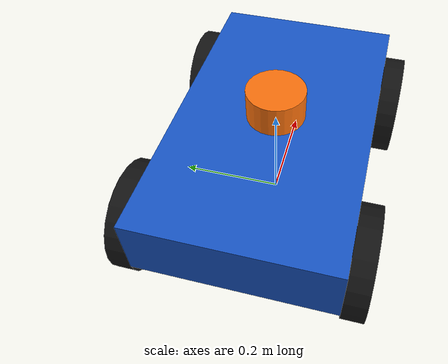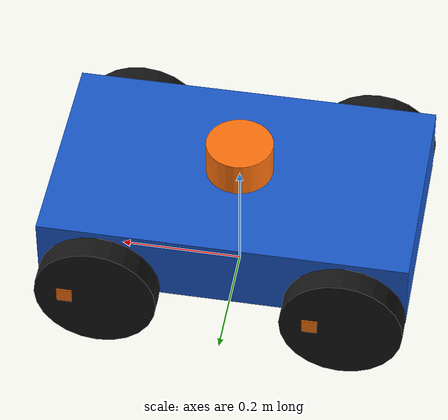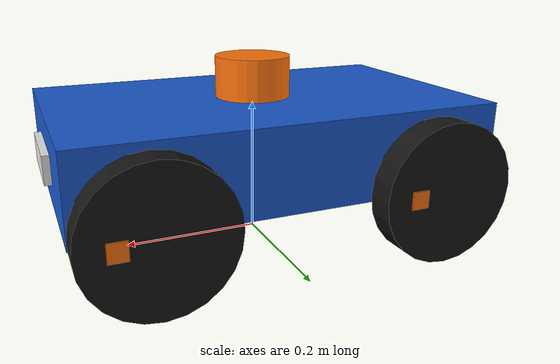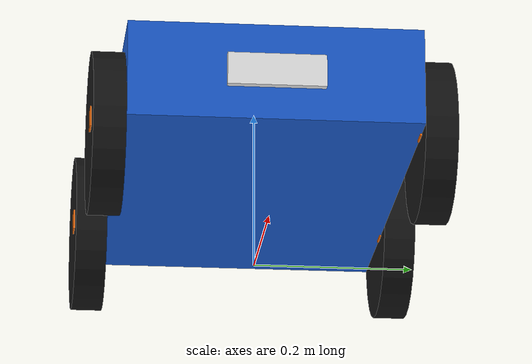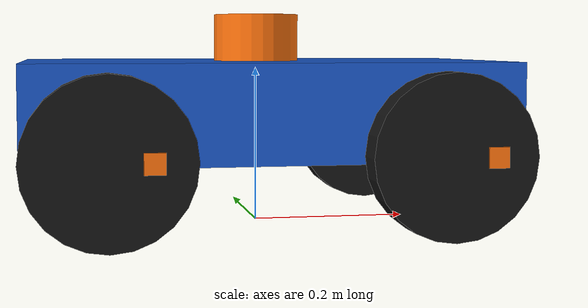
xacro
<?xml version="1.0"?>
<robot name="student_car" xmlns:xacro="http://www.ros.org/wiki/xacro">
  <!-- SI units: meters and radians; x forward, y left, z up. -->
  <xacro:property name="body_length" value="0.60"/>
  <xacro:property name="body_width" value="0.36"/>
  <xacro:property name="body_height" value="0.12"/>
  <xacro:property name="wheel_radius" value="0.10"/>
  <xacro:property name="wheel_width" value="0.04"/>
  <material name="blue"><color rgba="0.1 0.35 0.8 1"/></material>
  <material name="black"><color rgba="0.08 0.08 0.08 1"/></material>
  <material name="orange"><color rgba="1 0.45 0.05 1"/></material>
  <material name="white"><color rgba="0.9 0.9 0.9 1"/></material>
  <link name="base_footprint"/>
  <joint name="footprint_to_base" type="fixed">
    <parent link="base_footprint"/><child link="base_link"/>
    <origin xyz="0 0 0.15"/>
  </joint>
  <link name="base_link">
    <visual><geometry><box size="${body_length} ${body_width} ${body_height}"/></geometry><material name="blue"/></visual>
    <collision><geometry><box size="${body_length} ${body_width} ${body_height}"/></geometry></collision>
    <inertial>
      <mass value="3"/>
      <inertia ixx="${3*(body_width**2+body_height**2)/12}" ixy="0" ixz="0" iyy="${3*(body_length**2+body_height**2)/12}" iyz="0" izz="${3*(body_length**2+body_width**2)/12}"/>
    </inertial>
  </link>
  <xacro:macro name="wheel" params="name x y">
    <link name="${name}_link">
      <visual>
        <origin rpy="${pi/2} 0 0"/>
        <geometry><cylinder radius="${wheel_radius}" length="${wheel_width}"/></geometry>
        <material name="black"/>
      </visual>
      <!-- Offset hub marker makes wheel rotation visible in RViz. -->
      <visual><origin xyz="0.05 0 0"/><geometry><box size="0.025 0.044 0.025"/></geometry><material name="orange"/></visual>
      <collision><origin rpy="${pi/2} 0 0"/><geometry><cylinder radius="${wheel_radius}" length="${wheel_width}"/></geometry></collision>
      <inertial><mass value="0.2"/><inertia ixx="${0.2*(3*wheel_radius**2+wheel_width**2)/12}" ixy="0" ixz="0" iyy="${0.2*wheel_radius**2/2}" iyz="0" izz="${0.2*(3*wheel_radius**2+wheel_width**2)/12}"/></inertial>
    </link>
    <joint name="${name}_joint" type="continuous">
      <parent link="base_link"/><child link="${name}_link"/>
      <origin xyz="${x} ${y} -0.05"/><axis xyz="0 1 0"/>
    </joint>
  </xacro:macro>
  <xacro:wheel name="front_left_wheel" x="0.20" y="${body_width/2+wheel_width/2}"/>
  <xacro:wheel name="rear_left_wheel" x="-0.20" y="${body_width/2+wheel_width/2}"/>
  <xacro:wheel name="front_right_wheel" x="0.20" y="${-body_width/2-wheel_width/2}"/>
  <xacro:wheel name="rear_right_wheel" x="-0.20" y="${-body_width/2-wheel_width/2}"/>
  <link name="lidar_link">
    <inertial><mass value="0.1"/><inertia ixx="0.000106" ixy="0" ixz="0" iyy="0.000106" iyz="0" izz="0.000151"/></inertial>
    <visual><geometry><cylinder radius="0.055" length="0.06"/></geometry><material name="orange"/></visual>
  </link>
  <joint name="lidar_joint" type="fixed"><parent link="base_link"/><child link="lidar_link"/><origin xyz="0 0 0.09"/></joint>
  <link name="front_marker_link">
    <inertial><mass value="0.01"/><inertia ixx="0.0000133" ixy="0" ixz="0" iyy="0.00000142" iyz="0" izz="0.0000121"/></inertial><visual><geometry><box size="0.01 0.12 0.04"/></geometry><material name="white"/></visual></link>
  <joint name="front_marker_joint" type="fixed"><parent link="base_link"/><child link="front_marker_link"/><origin xyz="0.305 0 0"/></joint>

  <!-- Four wheel skid-steer: Gazebo physics publishes odom->base_footprint. -->
  <gazebo reference="base_link"><material>Gazebo/Blue</material></gazebo>
  <xacro:macro name="wheel_surface" params="name">
    <gazebo reference="${name}_link">
      <material>Gazebo/Black</material><mu1>0.8</mu1><mu2>0.4</mu2>
      <kp>1000000</kp><kd>100</kd>
    </gazebo>
  </xacro:macro>
  <xacro:wheel_surface name="front_left_wheel"/>
  <xacro:wheel_surface name="rear_left_wheel"/>
  <xacro:wheel_surface name="front_right_wheel"/>
  <xacro:wheel_surface name="rear_right_wheel"/>
  <gazebo>
    <plugin name="drive" filename="libgazebo_ros_skid_steer_drive.so">
      <robotNamespace>/</robotNamespace><updateRate>50</updateRate>
      <leftFrontJoint>front_left_wheel_joint</leftFrontJoint>
      <rightFrontJoint>front_right_wheel_joint</rightFrontJoint>
      <leftRearJoint>rear_left_wheel_joint</leftRearJoint>
      <rightRearJoint>rear_right_wheel_joint</rightRearJoint>
      <wheelSeparation>0.40</wheelSeparation><wheelDiameter>0.20</wheelDiameter>
      <torque>5</torque><commandTopic>cmd_vel</commandTopic>
      <odometryTopic>odom</odometryTopic><odometryFrame>odom</odometryFrame>
      <robotBaseFrame>base_footprint</robotBaseFrame><broadcastTF>true</broadcastTF>
    </plugin>
    <plugin name="wheel_states" filename="libgazebo_ros_joint_state_publisher.so">
      <robotNamespace>/</robotNamespace><updateRate>30</updateRate>
      <jointName>front_left_wheel_joint,rear_left_wheel_joint,front_right_wheel_joint,rear_right_wheel_joint</jointName>
    </plugin>
  </gazebo>
  <gazebo reference="lidar_link">
    <material>Gazebo/Orange</material>
    <sensor name="laser" type="ray">
      <pose>0 0 0 0 0 0</pose><always_on>true</always_on><update_rate>10</update_rate>
      <visualize>false</visualize>
      <ray>
        <scan><horizontal><samples>360</samples><resolution>1</resolution><min_angle>-${pi}</min_angle><max_angle>${pi}</max_angle></horizontal></scan>
        <range><min>0.12</min><max>8.0</max><resolution>0.01</resolution></range>
        <noise><type>gaussian</type><mean>0</mean><stddev>0.005</stddev></noise>
      </ray>
      <plugin name="laser_ros" filename="libgazebo_ros_laser.so">
        <robotNamespace>/</robotNamespace><topicName>scan</topicName><frameName>lidar_link</frameName>
      </plugin>
    </sensor>
  </gazebo>

</robot>
